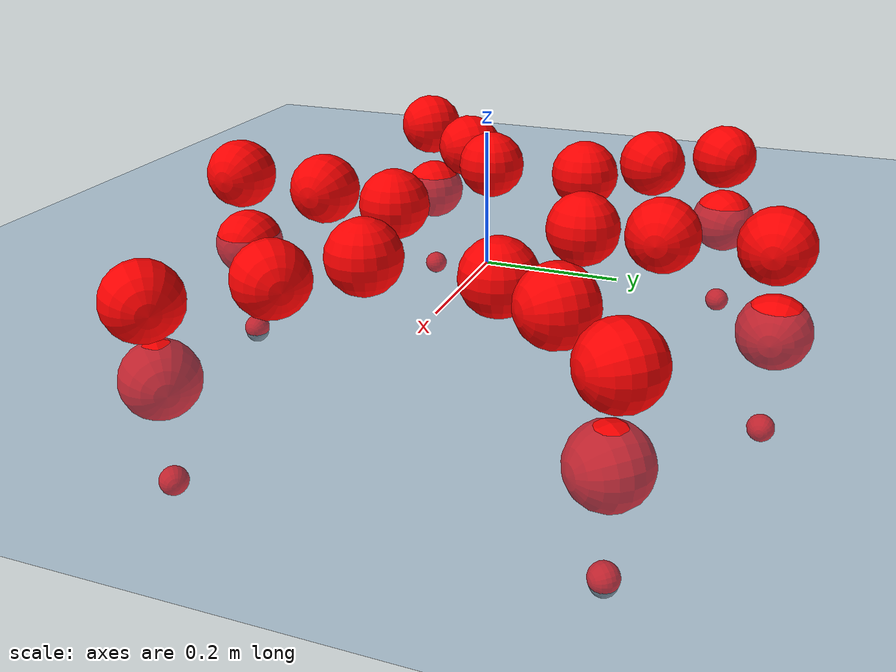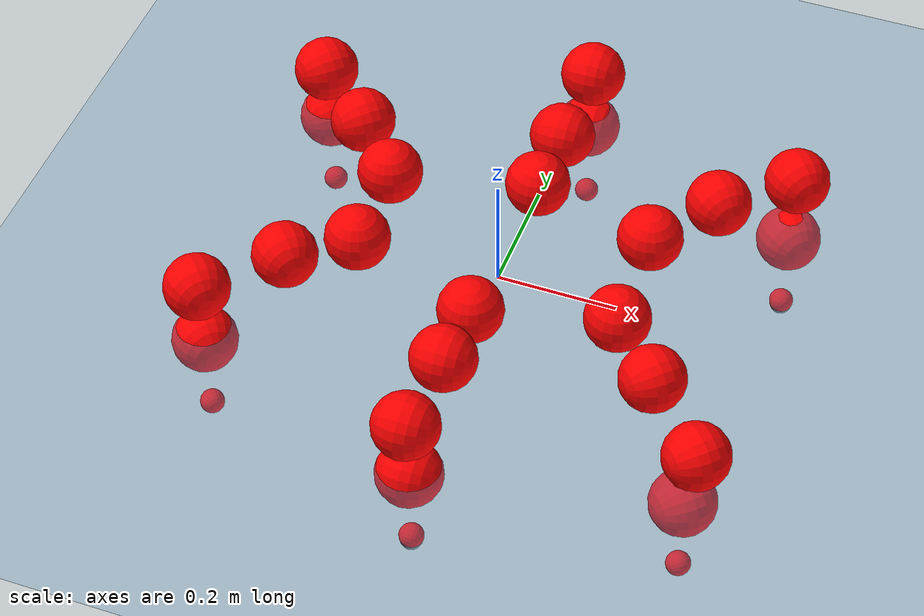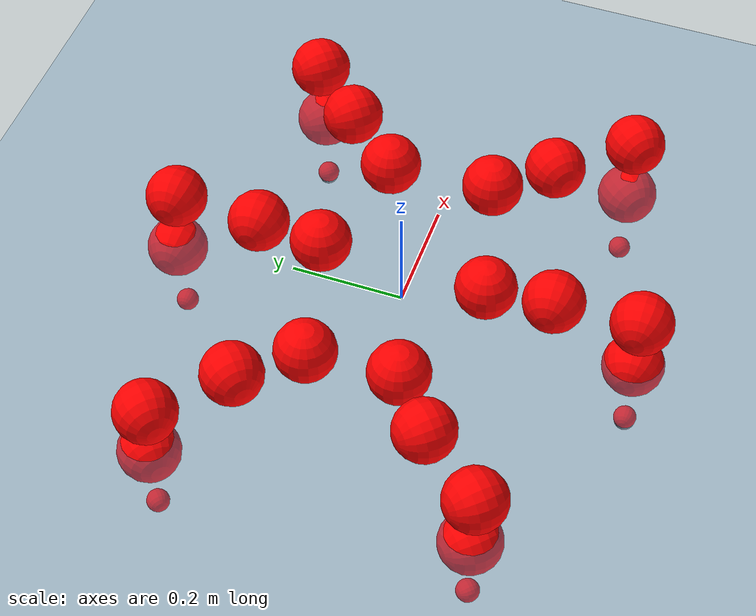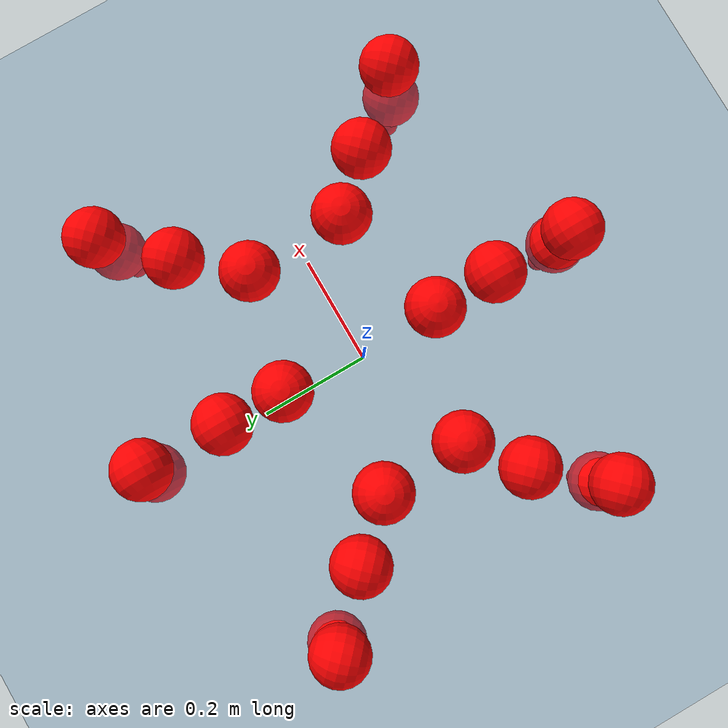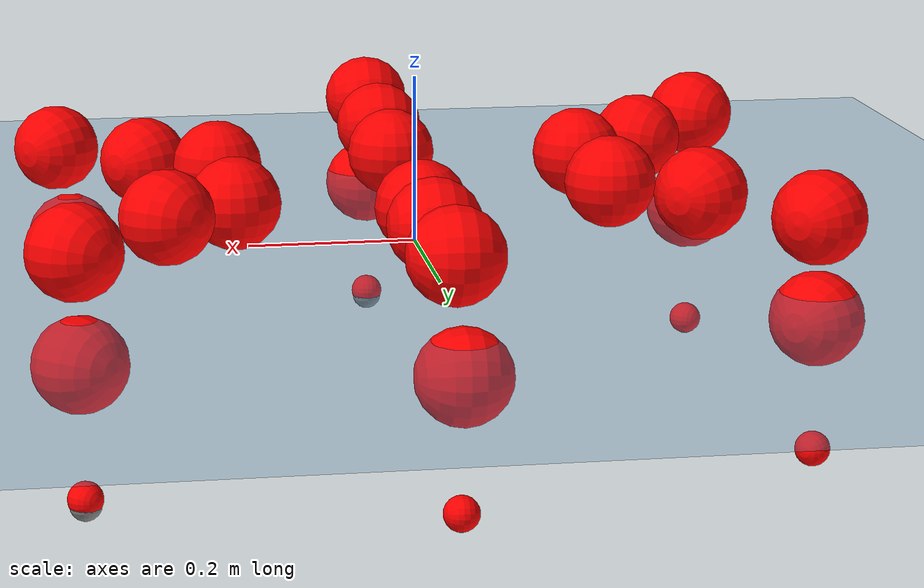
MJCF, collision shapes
<mujoco model="Golem">
  <compiler angle="radian" assetdir="assets" balanceinertia="true" inertiafromgeom="false"/>

  <option timestep="0.005" density="1.2" viscosity="2e-05"/>

  <size nkey="1"/>

  <visual>
    <quality shadowsize="8192"/>
    <map shadowclip="0.5"/>
  </visual>

  <default>
    <default class="/">
      <joint armature="0.01" damping="0.01" frictionloss="0.01"/>
      <geom contype="0" conaffinity="0" group="1" solref="-1000 -80"/>
      <site size="0.01 0.005 0.005" group="5"/>
      <general forcelimited="true" biastype="affine" gainprm="25" biasprm="0 -25 -0.5"/>
      <default class="visual">
        <geom type="mesh" group="2"/>
      </default>
      <default class="collision">
        <geom group="3"/>
      </default>
      <default class="foot">
        <geom size="0.01 0 0" condim="6" group="4" priority="1" solimp="0.015 1 0.01"/>
      </default>
      <default class="reward_collision_sphere">
        <geom group="5" rgba="1 0 0 1"/>
      </default>
    </default>
  </default>

  <asset>
    <texture type="skybox" colorspace="auto" name="//unnamed_texture_0" builtin="gradient" rgb1="0.95 0.95 0.95" rgb2="0.95 0.95 0.95" width="100" height="600"/>
    <texture type="2d" colorspace="auto" name="texplane" builtin="checker" rgb1="0.345 0.575 0.748" rgb2="0.345 0.575 0.748" markrgb="1 1 1" width="512" height="512"/>
    <material name="MatPlane" class="/" texture="texplane" texuniform="true" texrepeat="2 2" specular="0.9"/>
    <mesh name="body" class="/" file="body.stl" scale="0.001 0.001 0.001"/>
    <mesh name="coxa" class="/" file="coxa.stl" scale="0.001 0.001 0.001"/>
    <mesh name="femur" class="/" file="femur.stl" scale="0.001 0.001 0.001"/>
    <mesh name="tibia" class="/" file="tibia.stl" scale="0.001 0.001 0.001"/>
    <mesh name="tarsus" class="/" file="tarsus.stl" scale="0.001 0.001 0.001"/>
  </asset>

  <worldbody>
    <geom name="floor" class="/" size="100 100 0.125" type="plane" group="0" material="MatPlane"/>
    <light name="toplight_shadow" class="/" pos="0 0 5" dir="0.0990148 0.0990148 -0.990148" type="directional" ambient="0.04 0.04 0.04" diffuse="0.55 0.55 0.55" specular="0.12 0.12 0.12"/>
    <light name="toplight_fill" class="/" pos="0 0 5" dir="0.0990148 0.0990148 -0.990148" type="directional" castshadow="false" ambient="0.04 0.04 0.04" diffuse="0.3 0.3 0.3" specular="0.08 0.08 0.08"/>
    <body name="trunk" pos="0.00705019 0.00624512 -0.00118691" quat="0.999998 -0.000962381 0.00187967 0.000689959">
      <inertial pos="-0.00692733 -0.000439434 0.0119174" quat="0.99948 -0.00648178 -0.014396 0.0281251" mass="8.42319" diaginertia="0.055413 0.0488269 0.0228669"/>
      <joint name="//unnamed_joint_0" type="free"/>
      <geom name="//unnamed_geom_1" class="/" pos="0 0 0.0781679" quat="1 0 0 0" type="mesh" rgba="0.9 0.9 0.9 1" mesh="body"/>
      <site name="imu" class="/" pos="0.138131 -0.0351139 0.114868" size="0.0134729"/>
      <camera name="track" class="/" pos="0 -2.79252 0" quat="0.707107 0.707107 0 0" mode="trackcom"/>
      <camera name="ego_camera" class="/" pos="0.18515 0 0.122137" quat="-0.5 -0.5 0.5 0.5"/>
      <body name="coxa_RR" pos="-0.250112 -0.106477 0.0879252" quat="0.381633 0.000401821 0.000895178 -0.924313">
        <inertial pos="-0.000820372 -0.000710985 -0.00329787" quat="0.999974 0.00131534 -0.00103401 -0.00707718" mass="0.477703" diaginertia="0.0617971 0.0520016 0.0307939"/>
        <joint name="coxa_joint_RR" class="/" pos="0 0 0" axis="-0.00245104 -0.00291557 -0.999993" stiffness="0.00475597" range="-3.1215 3.22325" armature="0.0141572" damping="0.0216621" frictionloss="0.013235"/>
        <geom name="//unnamed_geom_2" class="/" type="mesh" rgba="0.2 0.2 0.2 1" mesh="coxa"/>
        <geom name="//unnamed_geom_3" class="reward_collision_sphere" size="0.0538916" pos="-0.042727 0 0"/>
        <body name="femur_RR" pos="0.076314 -0.0129821 0.000145339" quat="0.499347 -0.500625 0.500537 0.49949">
          <inertial pos="0.0121541 0.000553265 0.0132745" quat="0.998057 -0.0477974 0.0234267 -0.0323892" mass="0.542796" diaginertia="0.0641195 0.0582889 0.0302238"/>
          <joint name="femur_joint_RR" class="/" pos="0 0 0" axis="0.0130217 0.0217666 -0.999678" range="-3.09031 3.11477" armature="0.0127316" damping="0" frictionloss="0.0140313"/>
          <geom name="//unnamed_geom_4" class="/" type="mesh" rgba="0.9 0.9 0.9 1" mesh="femur"/>
          <geom name="//unnamed_geom_5" class="reward_collision_sphere" size="0.0538916"/>
          <body name="tibia_RR" pos="-0.00547373 -0.152003 0.0118909" quat="0.000257096 1 -9.25424e-05 0.000226153">
            <inertial pos="0.00152027 0.00120502 0.0099306" quat="0.999524 -0.0189647 0.00255163 -0.0242058" mass="0.383055" diaginertia="0.049262 0.0394684 0.022842"/>
            <joint name="tibia_joint_RR" class="/" pos="0 0 0" axis="-0.0247951 0.038276 0.99896" stiffness="0.0287853" range="-3.0124 3.12784" armature="0.0166952" damping="0.00597028" frictionloss="0.0192433"/>
            <geom name="//unnamed_geom_6" class="/" type="mesh" rgba="0.2 0.2 0.2 1" mesh="tibia"/>
            <geom name="//unnamed_geom_7" class="reward_collision_sphere" size="0.0538916"/>
            <body name="tarsus_RR" pos="0.126138 -0.00411337 0.00206584" quat="1 0.000292281 0.000348463 0.000502528">
              <inertial pos="0.0900612 -0.000442149 0.00195259" quat="0.528722 0.47856 0.530008 0.458829" mass="0.441335" diaginertia="0.0600653 0.0585425 0.0257726"/>
              <joint name="tarsus_joint_RR" class="/" pos="0 0 0" axis="-0.0228442 -0.0595265 0.997965" range="-3.15188 3.27719" armature="0.0163344" damping="0.0234665" frictionloss="0.0118031"/>
              <geom name="//unnamed_geom_8" class="/" type="mesh" rgba="0.9 0.9 0.9 1" mesh="tarsus"/>
              <geom name="foot_1" class="foot" size="0.014503" pos="0.159514 0 0" quat="0 -0.707107 0 0.707107"/>
              <geom name="//unnamed_geom_10" class="reward_collision_sphere" size="0.0538916"/>
              <geom name="//unnamed_geom_11" class="reward_collision_sphere" size="0.0202093" pos="0.153105 0 0"/>
              <site name="foot_1" class="foot" pos="0.159514 0 0" quat="0 -0.707107 0 0.707107" size="0.0134729"/>
            </body>
          </body>
        </body>
      </body>
      <body name="coxa_RM" pos="0.000474892 -0.196247 0.079256" quat="0.70421 0.00167231 -0.00464249 -0.709975">
        <inertial pos="0.0092117 0.00125379 0.010994" quat="0.999151 -0.00582738 -0.0222777 -0.0341705" mass="0.483641" diaginertia="0.0730432 0.0531095 0.0296338"/>
        <joint name="coxa_joint_RM" class="/" pos="0 0 0" axis="-0.009799 -0.0136441 -0.999859" range="-3.11234 3.14138" armature="0.0131528" damping="0.0107796" frictionloss="0.0164642"/>
        <geom name="//unnamed_geom_12" class="/" type="mesh" rgba="0.2 0.2 0.2 1" mesh="coxa"/>
        <geom name="//unnamed_geom_13" class="reward_collision_sphere" size="0.0538916" pos="-0.042727 0 0"/>
        <body name="femur_RM" pos="0.0751904 0.000648256 0.0108153" quat="0.496892 -0.501893 0.501535 0.499664">
          <inertial pos="-0.0113294 0.00107552 0.000286238" quat="0.998191 0.0441275 -0.0393784 -0.0107864" mass="0.501673" diaginertia="0.0570972 0.0591711 0.0275001"/>
          <joint name="femur_joint_RM" class="/" pos="0 0 0" axis="0.0355174 -0.0288696 -0.998952" stiffness="0.0302567" range="-3.11436 3.11076" armature="0.0112057" damping="0" frictionloss="0.0133869"/>
          <geom name="//unnamed_geom_14" class="/" type="mesh" rgba="0.9 0.9 0.9 1" mesh="femur"/>
          <geom name="//unnamed_geom_15" class="reward_collision_sphere" size="0.0538916"/>
          <body name="tibia_RM" pos="-0.0071956 -0.150513 -0.00200467" quat="-0.000451519 1 0.000317343 -0.000336424">
            <inertial pos="0.0120921 -0.0040692 0.00635631" quat="0.999993 0.00190948 0.00331328 0.000202941" mass="0.440101" diaginertia="0.05078 0.0567756 0.0303915"/>
            <joint name="tibia_joint_RM" class="/" pos="0 0 0" axis="0.0281832 0.0215874 0.99937" stiffness="0.00794882" range="-3.11848 3.21824" armature="0.0140135" damping="0.0238682" frictionloss="0.0160174"/>
            <geom name="//unnamed_geom_16" class="/" type="mesh" rgba="0.2 0.2 0.2 1" mesh="tibia"/>
            <geom name="//unnamed_geom_17" class="reward_collision_sphere" size="0.0538916"/>
            <body name="tarsus_RM" pos="0.116551 -0.00421113 -0.000999732" quat="1 0.000340168 8.55463e-05 0.000237407">
              <inertial pos="0.0872575 0.00291629 -0.000198972" quat="0.499352 0.505857 0.495151 0.499581" mass="0.472316" diaginertia="0.0635814 0.0501341 0.0234463"/>
              <joint name="tarsus_joint_RM" class="/" pos="0 0 0" axis="-0.0199716 -0.0373839 0.999101" range="-3.12688 3.1447" armature="0.0139082" damping="0.00583768" frictionloss="0.0138579"/>
              <geom name="//unnamed_geom_18" class="/" type="mesh" rgba="0.9 0.9 0.9 1" mesh="tarsus"/>
              <geom name="foot_2" class="foot" size="0.0188282" pos="0.159514 0 0" quat="0 -0.707107 0 0.707107"/>
              <geom name="//unnamed_geom_20" class="reward_collision_sphere" size="0.0538916"/>
              <geom name="//unnamed_geom_21" class="reward_collision_sphere" size="0.0202093" pos="0.153105 0 0"/>
              <site name="foot_2" class="foot" pos="0.159514 0 0" quat="0 -0.707107 0 0.707107" size="0.0134729"/>
            </body>
          </body>
        </body>
      </body>
      <body name="coxa_RF" pos="0.252408 -0.125956 0.0825961" quat="0.923898 -3.69323e-05 -2.67631e-05 -0.382638">
        <inertial pos="0.0129235 -0.000909284 0.00138157" quat="0.998857 -0.000854271 -0.00668967 -0.0473249" mass="0.384148" diaginertia="0.051246 0.0574954 0.0254806"/>
        <joint name="coxa_joint_RF" class="/" pos="0 0 0" axis="0.000575558 -0.00584415 -0.999983" range="-3.05288 3.1471" armature="0.00829616" damping="0.0196507" frictionloss="0.0156055"/>
        <geom name="//unnamed_geom_22" class="/" type="mesh" rgba="0.2 0.2 0.2 1" mesh="coxa"/>
        <geom name="//unnamed_geom_23" class="reward_collision_sphere" size="0.0538916" pos="-0.042727 0 0"/>
        <body name="femur_RF" pos="0.081882 -0.00288567 -0.0111928" quat="0.500436 -0.500963 0.498966 0.499633">
          <inertial pos="-0.00600587 -0.0120398 -0.00558664" quat="0.999998 0.00156263 0.00131147 -0.000589675" mass="0.541609" diaginertia="0.0543577 0.0602055 0.0276054"/>
          <joint name="femur_joint_RF" class="/" pos="0 0 0" axis="0.0304151 0.0144891 -0.999432" stiffness="0.0585256" range="-3.15491 3.28315" armature="0.0143809" damping="0" frictionloss="0.0149206"/>
          <geom name="//unnamed_geom_24" class="/" type="mesh" rgba="0.9 0.9 0.9 1" mesh="femur"/>
          <geom name="//unnamed_geom_25" class="reward_collision_sphere" size="0.0538916"/>
          <body name="tibia_RF" pos="0.00541537 -0.159585 -0.00900047" quat="-0.000114933 1 0.000117416 -0.000351198">
            <inertial pos="0.0107125 0.00769545 -0.00960607" quat="0.999549 -0.0154415 0.016602 0.0196852" mass="0.441664" diaginertia="0.0576665 0.0535172 0.0276938"/>
            <joint name="tibia_joint_RF" class="/" pos="0 0 0" axis="0.0014365 0.00774697 0.999969" range="-3.13011 3.29721" armature="0.0128808" damping="0.0721607" frictionloss="0.0140341"/>
            <geom name="//unnamed_geom_26" class="/" type="mesh" rgba="0.2 0.2 0.2 1" mesh="tibia"/>
            <geom name="//unnamed_geom_27" class="reward_collision_sphere" size="0.0538916"/>
            <body name="tarsus_RF" pos="0.116163 -0.0108252 0.0102915" quat="0.999993 0.000970258 0.00347926 -0.000602924">
              <inertial pos="0.0851005 -0.000483029 -0.00151847" quat="0.503604 0.50454 0.497297 0.494488" mass="0.461258" diaginertia="0.0544713 0.0441103 0.0298447"/>
              <joint name="tarsus_joint_RF" class="/" pos="0 0 0" axis="-0.0113084 0.0135713 0.999844" stiffness="0.0153101" range="-3.02957 3.1644" armature="0.00768751" damping="0.00361225" frictionloss="0.00471288"/>
              <geom name="//unnamed_geom_28" class="/" type="mesh" rgba="0.9 0.9 0.9 1" mesh="tarsus"/>
              <geom name="foot_3" class="foot" size="0.00773065" pos="0.159514 0 0" quat="0 -0.707107 0 0.707107"/>
              <geom name="//unnamed_geom_30" class="reward_collision_sphere" size="0.0538916"/>
              <geom name="//unnamed_geom_31" class="reward_collision_sphere" size="0.0202093" pos="0.153105 0 0"/>
              <site name="foot_3" class="foot" pos="0.159514 0 0" quat="0 -0.707107 0 0.707107" size="0.0134729"/>
            </body>
          </body>
        </body>
      </body>
      <body name="coxa_LR" pos="-0.256915 0.112919 0.0864226" quat="0.38016 0.00355568 -0.00305444 0.924909">
        <inertial pos="0.000652937 -0.00192073 0.0124928" quat="0.999077 0.00569148 -0.00906922 0.0415932" mass="0.640564" diaginertia="0.0688896 0.0615418 0.0313453"/>
        <joint name="coxa_joint_LR" class="/" pos="0 0 0" axis="-0.000142651 0.000506736 -1" range="-3.08583 2.88634" armature="0.00765063" damping="0.00402952" frictionloss="0.0219477"/>
        <geom name="//unnamed_geom_32" class="/" type="mesh" rgba="0.2 0.2 0.2 1" mesh="coxa"/>
        <geom name="//unnamed_geom_33" class="reward_collision_sphere" size="0.0538916" pos="-0.042727 0 0"/>
        <body name="femur_LR" pos="0.0834242 -0.0067108 0.00318879" quat="0.500327 -0.499615 0.499876 0.500181">
          <inertial pos="-0.000624728 -0.000372587 5.20289e-05" quat="0.999551 0.00195835 -0.018474 0.0235066" mass="0.525717" diaginertia="0.0661574 0.0476427 0.0292962"/>
          <joint name="femur_joint_LR" class="/" pos="0 0 0" axis="-0.0148572 0.00314107 0.999885" stiffness="0.0338359" range="-3.11967 3.30977" armature="0.00891097" damping="0" frictionloss="0.0153121"/>
          <geom name="//unnamed_geom_34" class="/" type="mesh" rgba="0.9 0.9 0.9 1" mesh="femur"/>
          <geom name="//unnamed_geom_35" class="reward_collision_sphere" size="0.0538916"/>
          <body name="tibia_LR" pos="0.00937801 -0.150389 0.00282617" quat="0.00229134 0.999991 0.00192755 -0.00308356">
            <inertial pos="-0.00675714 -0.0115971 0.000819461" quat="0.999007 0.0158777 -0.0376134 0.0178174" mass="0.534076" diaginertia="0.0488485 0.0466616 0.0312873"/>
            <joint name="tibia_joint_LR" class="/" pos="0 0 0" axis="0.0046327 0.0148232 -0.999879" range="-3.1662 3.11481" armature="0.0112761" damping="0" frictionloss="0.00948839"/>
            <geom name="//unnamed_geom_36" class="/" type="mesh" rgba="0.2 0.2 0.2 1" mesh="tibia"/>
            <geom name="//unnamed_geom_37" class="reward_collision_sphere" size="0.0538916"/>
            <body name="tarsus_LR" pos="0.114717 0.00350954 0.00512044" quat="0.999997 0.000138299 -4.68485e-05 0.00226677">
              <inertial pos="0.0905586 0.0067195 0.00331531" quat="0.502887 0.479736 0.505536 0.511265" mass="0.57237" diaginertia="0.0691168 0.0632122 0.0319304"/>
              <joint name="tarsus_joint_LR" class="/" pos="0 0 0" axis="-0.00505808 -0.00276903 -0.999983" stiffness="0.000676348" range="-3.12221 3.16757" armature="0.0225201" damping="0.0210741" frictionloss="0.0157544"/>
              <geom name="//unnamed_geom_38" class="/" type="mesh" rgba="0.9 0.9 0.9 1" mesh="tarsus"/>
              <geom name="foot_4" class="foot" size="0.0126256" pos="0.159514 0 0" quat="0.707107 0 -0.707107 0"/>
              <geom name="//unnamed_geom_40" class="reward_collision_sphere" size="0.0538916"/>
              <geom name="//unnamed_geom_41" class="reward_collision_sphere" size="0.0202093" pos="0.153105 0 0"/>
              <site name="foot_4" class="foot" pos="0.159514 0 0" quat="0.707107 0 -0.707107 0" size="0.0134729"/>
            </body>
          </body>
        </body>
      </body>
      <body name="coxa_LM" pos="0.00731379 0.187492 0.078951" quat="0.707594 -0.00661971 -0.00179109 0.706586">
        <inertial pos="-0.00954406 0.0105893 0.00622348" quat="0.998901 0.0188037 -0.0255415 0.0345195" mass="0.477225" diaginertia="0.0607015 0.0490676 0.0248895"/>
        <joint name="coxa_joint_LM" class="/" pos="0 0 0" axis="0.00340396 -0.000465017 -0.999994" range="-3.16975 3.16457" armature="0.00517591" damping="0.0343127" frictionloss="0.011433"/>
        <geom name="//unnamed_geom_42" class="/" type="mesh" rgba="0.2 0.2 0.2 1" mesh="coxa"/>
        <geom name="//unnamed_geom_43" class="reward_collision_sphere" size="0.0538916" pos="-0.042727 0 0"/>
        <body name="femur_LM" pos="0.072426 -0.00240417 0.00677495" quat="0.496688 -0.499899 0.501583 0.501814">
          <inertial pos="0.00916736 -0.000175635 0.0106829" quat="0.999517 -0.0229847 -0.0182944 -0.0101001" mass="0.384639" diaginertia="0.0540292 0.0478712 0.0247071"/>
          <joint name="femur_joint_LM" class="/" pos="0 0 0" axis="-0.00549637 0.00462836 0.999974" range="-3.27511 3.09023" armature="0.00845191" damping="0.0284113" frictionloss="0.0135236"/>
          <geom name="//unnamed_geom_44" class="/" type="mesh" rgba="0.9 0.9 0.9 1" mesh="femur"/>
          <geom name="//unnamed_geom_45" class="reward_collision_sphere" size="0.0538916"/>
          <body name="tibia_LM" pos="-0.00718645 -0.154335 -0.00223581" quat="0.000659113 0.999999 0.00042862 0.00108977">
            <inertial pos="-0.0122216 -0.0128462 -0.0132379" quat="0.999974 0.00469839 0.00348647 0.00427544" mass="0.480088" diaginertia="0.0614191 0.0593587 0.02419"/>
            <joint name="tibia_joint_LM" class="/" pos="0 0 0" axis="-0.0181406 0.0227511 -0.999577" stiffness="0.0404198" range="-3.18921 3.16896" armature="0.00834719" damping="0" frictionloss="0.0191876"/>
            <geom name="//unnamed_geom_46" class="/" type="mesh" rgba="0.2 0.2 0.2 1" mesh="tibia"/>
            <geom name="//unnamed_geom_47" class="reward_collision_sphere" size="0.0538916"/>
            <body name="tarsus_LM" pos="0.128969 0.00996802 -0.00902732" quat="0.999994 0.00265218 0.000273407 -0.00235038">
              <inertial pos="0.0817764 -0.00416848 -0.00657394" quat="0.49996 0.500054 0.500073 0.499913" mass="0.414538" diaginertia="0.0566565 0.0371365 0.0242249"/>
              <joint name="tarsus_joint_LM" class="/" pos="0 0 0" axis="0.0272569 0.0360032 -0.99898" range="-2.85974 3.13514" armature="0.0126587" damping="0" frictionloss="0.014205"/>
              <geom name="//unnamed_geom_48" class="/" type="mesh" rgba="0.9 0.9 0.9 1" mesh="tarsus"/>
              <geom name="foot_5" class="foot" size="0.0143871" pos="0.159514 0 0" quat="0.707107 0 -0.707107 0"/>
              <geom name="//unnamed_geom_50" class="reward_collision_sphere" size="0.0538916"/>
              <geom name="//unnamed_geom_51" class="reward_collision_sphere" size="0.0202093" pos="0.153105 0 0"/>
              <site name="foot_5" class="foot" pos="0.159514 0 0" quat="0.707107 0 -0.707107 0" size="0.0134729"/>
            </body>
          </body>
        </body>
      </body>
      <body name="coxa_LF" pos="0.246416 0.121453 0.0780494" quat="0.92507 0.00198097 0.00397567 0.37977">
        <inertial pos="-0.000609919 -0.0125087 -0.00150683" quat="0.999989 -3.08801e-06 -0.00114772 -0.00448014" mass="0.457884" diaginertia="0.0533728 0.0398808 0.0232988"/>
        <joint name="coxa_joint_LF" class="/" pos="0 0 0" axis="-0.031315 0.0140434 -0.999411" range="-3.11394 3.14765" armature="0.00477862" damping="0.00334382" frictionloss="0.0116758"/>
        <geom name="//unnamed_geom_52" class="/" type="mesh" rgba="0.2 0.2 0.2 1" mesh="coxa"/>
        <geom name="//unnamed_geom_53" class="reward_collision_sphere" size="0.0538916" pos="-0.042727 0 0"/>
        <body name="femur_LF" pos="0.0876569 0.013984 0.0115632" quat="0.502009 -0.496659 0.502199 0.499112">
          <inertial pos="-0.00740595 0.00129152 -0.0132131" quat="0.998695 0.0496529 0.0119306 0.00081708" mass="0.491528" diaginertia="0.0638066 0.0443269 0.0271795"/>
          <joint name="femur_joint_LF" class="/" pos="0 0 0" axis="-0.0306719 0.0305788 0.999062" stiffness="0.046174" range="-3.16828 3.3794" armature="0.0144838" damping="0.0417504" frictionloss="0.0121258"/>
          <geom name="//unnamed_geom_54" class="/" type="mesh" rgba="0.9 0.9 0.9 1" mesh="femur"/>
          <geom name="//unnamed_geom_55" class="reward_collision_sphere" size="0.0538916"/>
          <body name="tibia_LF" pos="0.00817167 -0.145483 0.000700121" quat="0.00111057 0.999986 -0.00490051 -0.00133406">
            <inertial pos="-0.00175805 0.0116028 0.00032212" quat="0.999993 0.00305084 -0.00135254 0.00182586" mass="0.483266" diaginertia="0.0630573 0.0534193 0.0283509"/>
            <joint name="tibia_joint_LF" class="/" pos="0 0 0" axis="-0.0343249 -0.0329755 -0.998867" range="-2.94726 3.15065" armature="0.00905453" damping="0.011719" frictionloss="0.00607604"/>
            <geom name="//unnamed_geom_56" class="/" type="mesh" rgba="0.2 0.2 0.2 1" mesh="tibia"/>
            <geom name="//unnamed_geom_57" class="reward_collision_sphere" size="0.0538916"/>
            <body name="tarsus_LF" pos="0.127264 -0.00683438 0.00454865" quat="0.999977 -0.00665915 -0.000452463 0.00120071">
              <inertial pos="0.0925781 0.000934821 -0.00060772" quat="0.50083 0.499132 0.500281 0.499755" mass="0.473772" diaginertia="0.0622674 0.0555618 0.0308671"/>
              <joint name="tarsus_joint_LF" class="/" pos="0 0 0" axis="0.00858493 0.0655285 -0.997814" range="-3.20969 3.32887" armature="0.0111542" damping="0.0631384" frictionloss="0.00987156"/>
              <geom name="//unnamed_geom_58" class="/" type="mesh" rgba="0.9 0.9 0.9 1" mesh="tarsus"/>
              <geom name="foot_6" class="foot" size="0.018332" pos="0.159514 0 0" quat="0.707107 0 -0.707107 0"/>
              <geom name="//unnamed_geom_60" class="reward_collision_sphere" size="0.0538916"/>
              <geom name="//unnamed_geom_61" class="reward_collision_sphere" size="0.0202093" pos="0.153105 0 0"/>
              <site name="foot_6" class="foot" pos="0.159514 0 0" quat="0.707107 0 -0.707107 0" size="0.0134729"/>
            </body>
          </body>
        </body>
      </body>
    </body>
  </worldbody>

  <contact>
    <pair class="/" geom1="floor" geom2="foot_1" name="//unnamed_contact_0"/>
    <pair class="/" geom1="floor" geom2="foot_2" name="//unnamed_contact_1"/>
    <pair class="/" geom1="floor" geom2="foot_3" name="//unnamed_contact_2"/>
    <pair class="/" geom1="floor" geom2="foot_4" name="//unnamed_contact_3"/>
    <pair class="/" geom1="floor" geom2="foot_5" name="//unnamed_contact_4"/>
    <pair class="/" geom1="floor" geom2="foot_6" name="//unnamed_contact_5"/>
  </contact>

  <actuator>
    <general name="coxa_joint_RR" class="/" joint="coxa_joint_RR" forcerange="-14.1593 14.1593" gainprm="30.178" biasprm="0 -30.178 -0.782805"/>
    <general name="femur_joint_RR" class="/" joint="femur_joint_RR" forcerange="-8.02831 8.02831" gainprm="30.178" biasprm="0 -30.178 -0.782805"/>
    <general name="tibia_joint_RR" class="/" joint="tibia_joint_RR" forcerange="-14.5756 14.5756" gainprm="30.178" biasprm="0 -30.178 -0.782805"/>
    <general name="tarsus_joint_RR" class="/" joint="tarsus_joint_RR" forcerange="-7.69674 7.69674" gainprm="30.178" biasprm="0 -30.178 -0.782805"/>
    <general name="coxa_joint_RM" class="/" joint="coxa_joint_RM" forcerange="-9.86833 9.86833" gainprm="30.178" biasprm="0 -30.178 -0.782805"/>
    <general name="femur_joint_RM" class="/" joint="femur_joint_RM" forcerange="-9.77007 9.77007" gainprm="30.178" biasprm="0 -30.178 -0.782805"/>
    <general name="tibia_joint_RM" class="/" joint="tibia_joint_RM" forcerange="-13.7687 13.7687" gainprm="30.178" biasprm="0 -30.178 -0.782805"/>
    <general name="tarsus_joint_RM" class="/" joint="tarsus_joint_RM" forcerange="-5.24845 5.24845" gainprm="30.178" biasprm="0 -30.178 -0.782805"/>
    <general name="coxa_joint_RF" class="/" joint="coxa_joint_RF" forcerange="-9.23396 9.23396" gainprm="30.178" biasprm="0 -30.178 -0.782805"/>
    <general name="femur_joint_RF" class="/" joint="femur_joint_RF" forcerange="-9.42108 9.42108" gainprm="30.178" biasprm="0 -30.178 -0.782805"/>
    <general name="tibia_joint_RF" class="/" joint="tibia_joint_RF" forcerange="-5.62849 5.62849" gainprm="30.178" biasprm="0 -30.178 -0.782805"/>
    <general name="tarsus_joint_RF" class="/" joint="tarsus_joint_RF" forcerange="-8.11324 8.11324" gainprm="30.178" biasprm="0 -30.178 -0.782805"/>
    <general name="coxa_joint_LR" class="/" joint="coxa_joint_LR" forcerange="-9.95775 9.95775" gainprm="30.178" biasprm="0 -30.178 -0.782805"/>
    <general name="femur_joint_LR" class="/" joint="femur_joint_LR" forcerange="-13.2689 13.2689" gainprm="30.178" biasprm="0 -30.178 -0.782805"/>
    <general name="tibia_joint_LR" class="/" joint="tibia_joint_LR" forcerange="-11.5211 11.5211" gainprm="30.178" biasprm="0 -30.178 -0.782805"/>
    <general name="tarsus_joint_LR" class="/" joint="tarsus_joint_LR" forcerange="-12.5095 12.5095" gainprm="30.178" biasprm="0 -30.178 -0.782805"/>
    <general name="coxa_joint_LM" class="/" joint="coxa_joint_LM" forcerange="-11.5232 11.5232" gainprm="30.178" biasprm="0 -30.178 -0.782805"/>
    <general name="femur_joint_LM" class="/" joint="femur_joint_LM" forcerange="-10.7591 10.7591" gainprm="30.178" biasprm="0 -30.178 -0.782805"/>
    <general name="tibia_joint_LM" class="/" joint="tibia_joint_LM" forcerange="-12.8125 12.8125" gainprm="30.178" biasprm="0 -30.178 -0.782805"/>
    <general name="tarsus_joint_LM" class="/" joint="tarsus_joint_LM" forcerange="-10.3916 10.3916" gainprm="30.178" biasprm="0 -30.178 -0.782805"/>
    <general name="coxa_joint_LF" class="/" joint="coxa_joint_LF" forcerange="-11.1574 11.1574" gainprm="30.178" biasprm="0 -30.178 -0.782805"/>
    <general name="femur_joint_LF" class="/" joint="femur_joint_LF" forcerange="-9.04505 9.04505" gainprm="30.178" biasprm="0 -30.178 -0.782805"/>
    <general name="tibia_joint_LF" class="/" joint="tibia_joint_LF" forcerange="-7.11132 7.11132" gainprm="30.178" biasprm="0 -30.178 -0.782805"/>
    <general name="tarsus_joint_LF" class="/" joint="tarsus_joint_LF" forcerange="-11.4578 11.4578" gainprm="30.178" biasprm="0 -30.178 -0.782805"/>
  </actuator>

  <sensor>
    <gyro site="imu" name="imu_angular_velocity"/>
    <velocimeter site="imu" name="imu_linear_velocity"/>
    <framelinvel objtype="site" objname="foot_1" name="foot_1_global_linear_velocity"/>
    <framelinvel objtype="site" objname="foot_2" name="foot_2_global_linear_velocity"/>
    <framelinvel objtype="site" objname="foot_3" name="foot_3_global_linear_velocity"/>
    <framelinvel objtype="site" objname="foot_4" name="foot_4_global_linear_velocity"/>
    <framelinvel objtype="site" objname="foot_5" name="foot_5_global_linear_velocity"/>
    <framelinvel objtype="site" objname="foot_6" name="foot_6_global_linear_velocity"/>
  </sensor>

  <keyframe>
    <key name="home" qpos="0 0 0.1457 1 0 0 0 0 0 0 0 0 0 0 0 0 0 0 0 0 0 0 0 0 0 0 0 0 0 0 0"/>
  </keyframe>
</mujoco>
